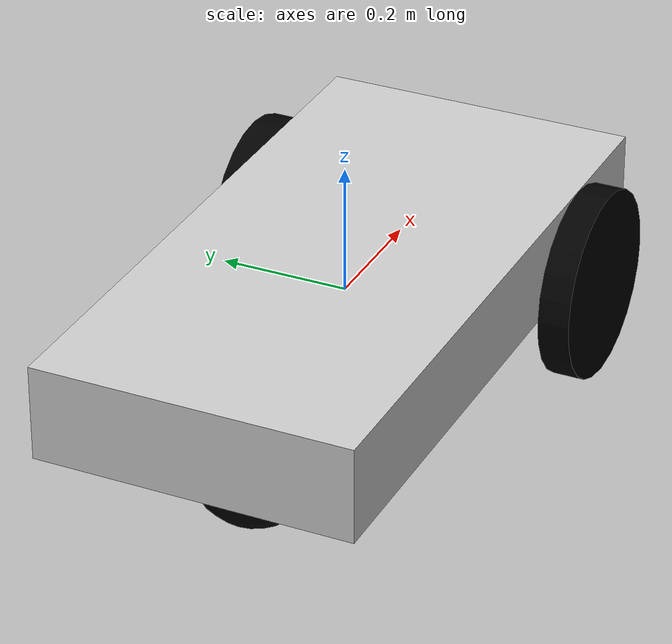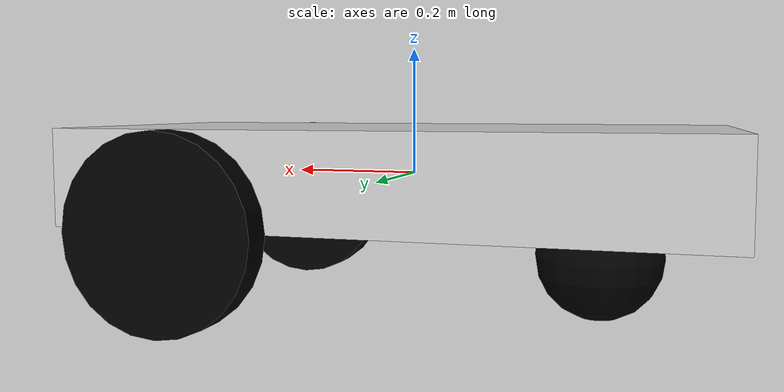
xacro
<?xml version="1.0"?>
<robot xmlns:xacro="http://www.ros.org/wiki/xacro" name="vehicle">

  <xacro:include filename="inertial_box.urdf.xacro"/>
  <xacro:include filename="inertial_cylinder.urdf.xacro"/>
  <xacro:include filename="inertial_sphere.urdf.xacro"/>
  <xacro:include filename="wheel.urdf.xacro"/>

  <!-- Inputs -->

  <xacro:property name="chassis_size_x" value="1.0" />
  <xacro:property name="chassis_size_y" value="0.5" />
  <xacro:property name="chassis_size_z" value="0.15" />
  <xacro:property name="chassis_mass" value="1.0" />

  <xacro:property name="wheel_radius" value="0.15" />
  <xacro:property name="wheel_length" value="0.05" />
  <xacro:property name="wheel_mass" value="0.5" />

  <xacro:property name="caster_radius" value="0.1" />
  <xacro:property name="caster_mass" value="0.0415553" />

  <!-- Calculated properties -->
  <xacro:property name="wheel_x_offset" value="${chassis_size_x * 0.3}" />
  <xacro:property name="wheel_y_offset" value="${(chassis_size_y + wheel_length) * 0.5}" />
  <xacro:property name="wheel_z_offset" value="${-wheel_radius * 0.5}" />

  <xacro:property name="caster_x_offset" value="${-chassis_size_x * 0.3}" />
  <xacro:property name="caster_y_offset" value="0" />
  <xacro:property name="caster_z_offset" value="${-(chassis_size_z + caster_radius) * 0.5}" />

  <material name="grey">
    <color rgba="0.8 0.8 0.8 1" />
  </material>

  <material name="black">
    <color rgba="0 0 0 1"/>
  </material>

  <link name="chassis">
    <visual>
      <geometry>
        <box size="${chassis_size_x} ${chassis_size_y} ${chassis_size_z}"/>
      </geometry>
      <material name="grey"/>
    </visual>
    <collision>
      <geometry>
        <box size="${chassis_size_x} ${chassis_size_y} ${chassis_size_z}"/>
      </geometry>
    </collision>
    <xacro:inertial_box
      mass="${chassis_mass}"
      x="${chassis_size_x}"
      y="${chassis_size_y}"
      z="${chassis_size_z}"/>
  </link>

  <xacro:wheel side="left"/>
  <xacro:wheel side="right"/>

  <!-- caster -->
  <joint name="caster_wheel_joint" type="fixed">
    <parent link="chassis"/>
    <child link="caster_wheel"/>
    <origin xyz="${caster_x_offset} ${caster_y_offset} ${caster_z_offset}"/>
  </joint>
  <link name="caster_wheel">
    <visual>
      <geometry>
        <sphere radius="${caster_radius}"/>
      </geometry>
      <material name="black"/>
    </visual>
    <collision>
      <geometry>
        <sphere radius="${caster_radius}"/>
      </geometry>
    </collision>
    <xacro:inertial_sphere
      mass="${caster_mass}"
      radius="${caster_radius}"/>
  </link>

</robot>

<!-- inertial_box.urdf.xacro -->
<robot xmlns:xacro="http://www.ros.org/wiki/xacro">
  <xacro:macro name="inertial_box" params="mass x y z">
    <inertial>
      <mass value="${mass}" />
      <inertia
        ixx="${mass * (y*y+z*z) / 12.0}"
        ixy="0.0"
        ixz="0.0"
        iyy="${mass * (x*x+z*z) / 12.0}"
        iyz="0.0"
        izz="${mass * (x*x+y*y) / 12.0}" />
    </inertial>
  </xacro:macro>
</robot>

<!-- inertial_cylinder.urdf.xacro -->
<robot xmlns:xacro="http://www.ros.org/wiki/xacro">
  <xacro:macro name="inertial_cylinder" params="mass radius length">
    <xacro:property
      name="xy"
      value="${mass * (3 * radius * radius + length * length) / 12.0}"/>
    <xacro:property
      name="z"
      value="${mass * radius * radius * 0.5}"/>

    <inertial>
      <mass value="${mass}" />
      <inertia
        ixx="${xy}"
        ixy="0.0"
        ixz="0.0"
        iyy="${xy}"
        iyz="0.0"
        izz="${z}" />
    </inertial>
  </xacro:macro>
</robot>

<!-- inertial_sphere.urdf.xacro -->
<robot xmlns:xacro="http://www.ros.org/wiki/xacro">
  <xacro:macro name="inertial_sphere" params="mass radius">
    <xacro:property
      name="inertia"
      value="${(2 * mass * radius * radius) / 5.0}"/>
    <inertial>
      <mass value="${mass}" />
      <inertia
        ixx="${inertia}"
        ixy="0.0"
        ixz="0.0"
        iyy="${inertia}"
        iyz="0.0"
        izz="${inertia}" />
    </inertial>
  </xacro:macro>
</robot>

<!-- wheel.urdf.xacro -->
<robot xmlns:xacro="http://www.ros.org/wiki/xacro">

  <!-- Generates one of the actuated cylindrical wheels -->
  <xacro:macro name="wheel" params="side">
    <xacro:if value="${side == 'left'}">
      <xacro:property name="y_offset" value="${wheel_y_offset}"/>
    </xacro:if>
    <xacro:if value="${side == 'right'}">
      <xacro:property name="y_offset" value="-${wheel_y_offset}"/>
    </xacro:if>

    <joint name="${side}_wheel_joint" type="continuous">
      <parent link="chassis"/>
      <child link="${side}_wheel"/>
      <origin
        xyz="${wheel_x_offset} ${y_offset} ${wheel_z_offset}"
        rpy="-${pi*0.5} 0 0" />
      <axis xyz="0 0 1"/>
    </joint>
    <link name="${side}_wheel">
      <visual>
        <geometry>
          <cylinder radius="${wheel_radius}" length="${wheel_length}"/>
        </geometry>
        <material name="black"/>
      </visual>
      <collision>
        <geometry>
          <cylinder radius="${wheel_radius}" length="${wheel_length}"/>
        </geometry>
      </collision>
      <xacro:inertial_cylinder
        mass="${wheel_mass}"
        radius="${wheel_radius}"
        length="${wheel_length}"/>
    </link>
  </xacro:macro>

</robot>
